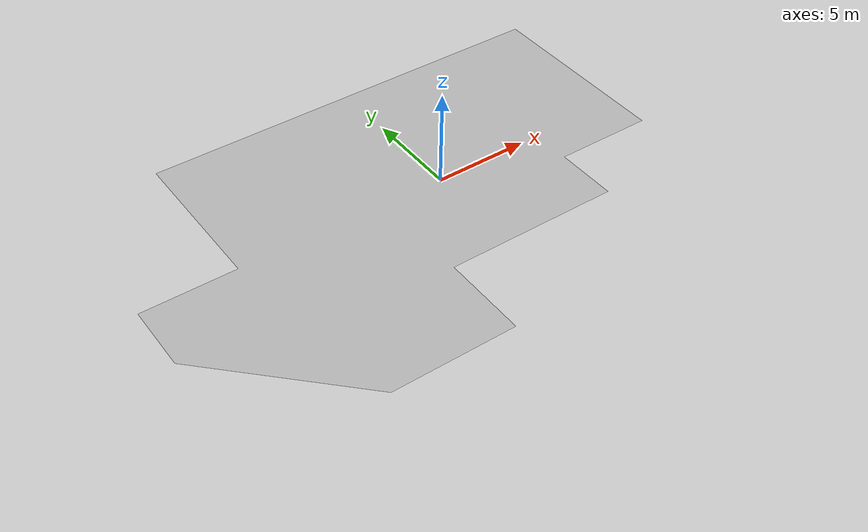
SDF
<?xml version='1.0' ?>
<sdf version='1.6'>
  <model name='floor'>
    <static>true</static>
    <link name='link'>
      <collision name='collision'>
        <geometry>
          <plane>
            <normal>0 0 1</normal>
            <size>100 100</size>
          </plane>
        </geometry>
        <surface>
          <friction>
            <ode>
              <mu>100</mu>
              <mu2>50</mu2>
            </ode>
            <torsional>
              <ode/>
            </torsional>
          </friction>
        <contact>
          <ode/>
        </contact>
        <bounce/>
        </surface>
        <max_contacts>10</max_contacts>
      </collision>
      <self_collide>0</self_collide>
      <enable_wind>0</enable_wind>
      <kinematic>0</kinematic>
      <visual name='visual'>
        <geometry>
          <mesh>
            <scale>0.99 0.99 1</scale>
            <uri>model://volta_simulation/models/floor/meshes/floor.dae</uri>
          </mesh>
        </geometry>
        <material>
          <script>
            <uri>model://volta_simulation/models/floor/materials/scripts</uri>
            <uri>model://volta_simulation/models/floor/materials/textures</uri>
            <name>floor</name>
          </script>
        </material>
      </visual>
    </link>
  </model>
</sdf>
